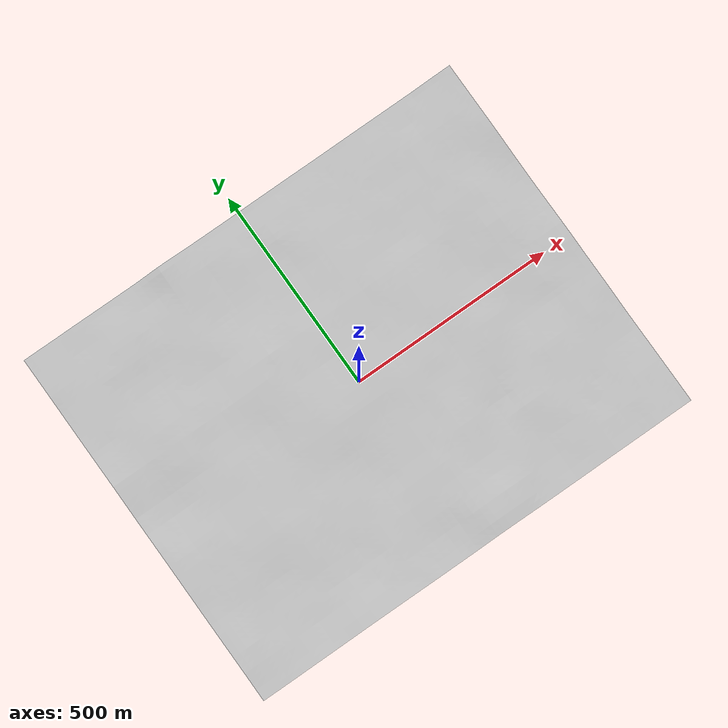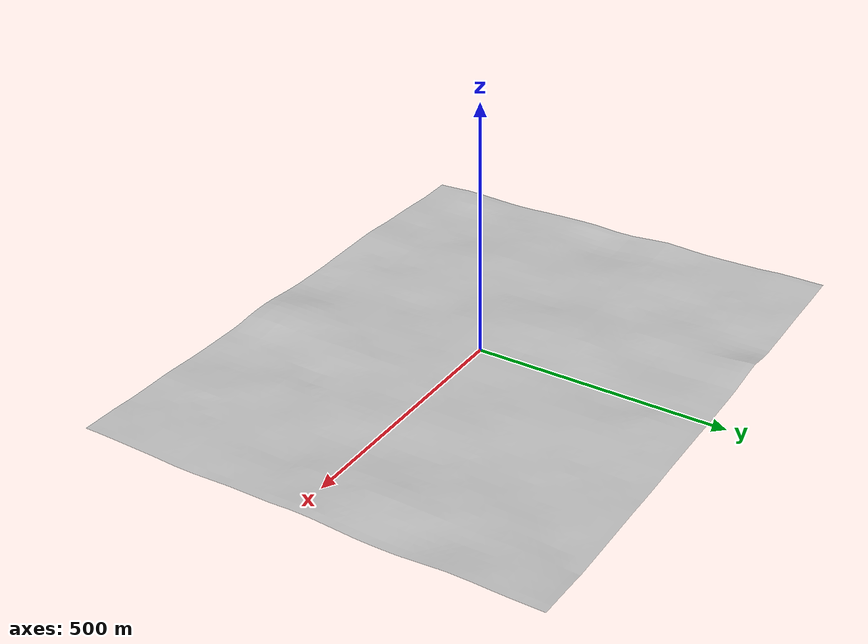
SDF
<?xml version="1.0" ?>
<sdf version="1.6">
  <world name="default">
    <!--camera-->
    <gui fullscreen='0'>
      <camera name="gzclient_camera">
        <track_visual>
          <static>true</static>
          <!--change use_model_frame to switch between chase and stationary camera-->
          <use_model_frame>true</use_model_frame>
          <xyz>-5 0 1</xyz> <!--chase camera offset-->
          <!--stationary camera offset-->
          <inherit_yaw>true</inherit_yaw>
        </track_visual>
      </camera>
    </gui>
    <!--control weather and time of day-->
    <scene>
      <sky>
      <time>12</time>
        <clouds>
          <speed>8</speed>
          <mean_size>0.5</mean_size>
        </clouds>
      </sky>
    </scene>
    <!-- A global light source -->
    <include>
      <uri>model://sun</uri>
    </include>
    <!--terrain-->
    <include>
      <uri>model://central_iowa_aeromodelers_field</uri>
      <pose>0 0 0 0 0 0</pose>
    </include>
    <!--gps location-->
    <spherical_coordinates>
      <surface_model>EARTH_WGS84</surface_model>
      <latitude_deg>41.925855</latitude_deg>
      <longitude_deg>-93.539990</longitude_deg>
      <elevation>259.0</elevation>
    </spherical_coordinates>
    <!--physics-->
    <gravity>0 0 -9.8066</gravity>
    <magnetic_field>6.0e-6 2.3e-5 -4.2e-5</magnetic_field>
    <physics name='default_physics' default='0' type='ode'>
      <ode>
        <solver>
          <type>quick</type>
          <iters>10</iters>
          <sor>1.3</sor>
          <use_dynamic_moi_rescaling>0</use_dynamic_moi_rescaling>
        </solver>
        <constraints>
          <cfm>0</cfm>
          <erp>0.2</erp>
          <contact_max_correcting_vel>100</contact_max_correcting_vel>
          <contact_surface_layer>0.001</contact_surface_layer>
        </constraints>
      </ode>
      <max_step_size>0.004</max_step_size>
      <real_time_factor>1</real_time_factor>
      <real_time_update_rate>250</real_time_update_rate>
    </physics>
  </world>
</sdf>

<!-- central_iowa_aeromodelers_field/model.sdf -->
<sdf version="1.6">
  <model name="central_iowa_aeromodelers_field">
    <pose>0 0 0 0 0 0</pose>
    <static>true</static>
    <link name="link">
      <collision name="collision">
        <geometry>
          <mesh>
            <uri>model://central_iowa_aeromodelers_field/meshes/airfield.dae</uri>
            <scale>1 1 1</scale>
          </mesh>
        </geometry>
      </collision>

      <visual name="visual">
        <geometry>
          <mesh>
            <uri>model://central_iowa_aeromodelers_field/meshes/airfield.dae</uri>
            <scale>1 1 1</scale>
          </mesh>
        </geometry>
        <material>
          <script>
            <uri>model://central_iowa_aeromodelers_field/materials/scripts</uri>
            <uri>model://central_iowa_aeromodelers_field/materials/textures</uri>
            <name>airfieldMat/Diffuse</name>
          </script>
        </material>
      </visual>
    </link>
  </model>
</sdf>
